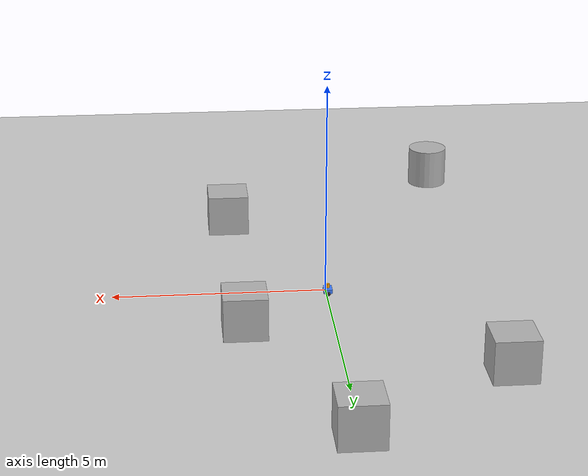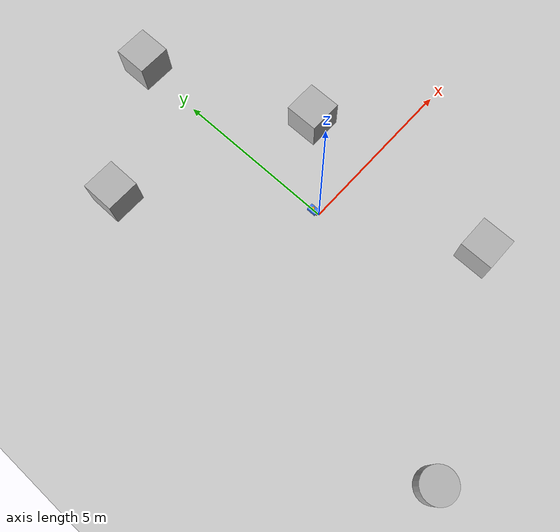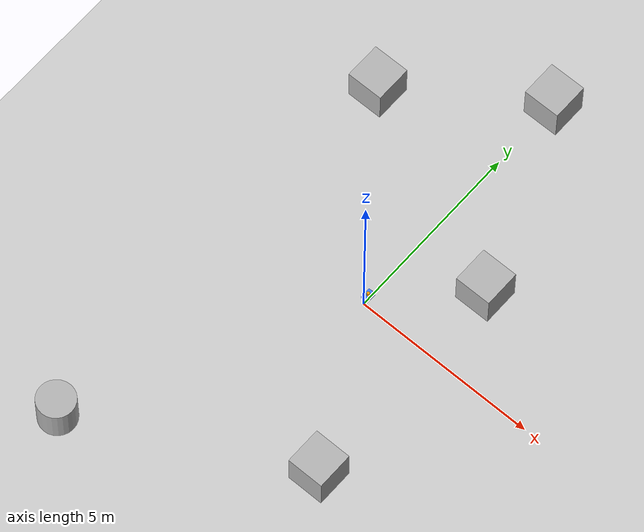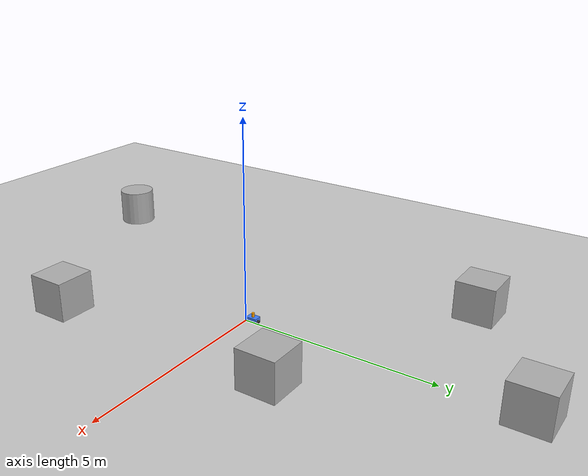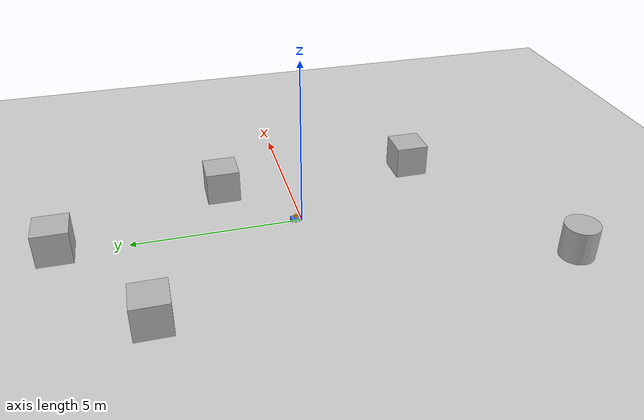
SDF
<sdf version="1.10">
 <world name="empty">
  <physics name="1ms" type="ignored">
   <max_step_size>0.001</max_step_size>
   <real_time_factor>1</real_time_factor>
   <real_time_update_rate>1000</real_time_update_rate>
  </physics>
  <plugin name="gz::sim::systems::Physics" filename="gz-sim-physics-system"/>
  <plugin name="gz::sim::systems::UserCommands" filename="gz-sim-user-commands-system"/>
  <plugin name="gz::sim::systems::SceneBroadcaster" filename="gz-sim-scene-broadcaster-system"/>
  <plugin name="gz::sim::systems::Contact" filename="gz-sim-contact-system"/>
  <plugin name="gz::sim::systems::Sensors" filename="gz-sim-sensors-system">
   <render_engine>ogre2</render_engine>
  </plugin>
  <plugin name="gz::sim::systems::Imu" filename="gz-sim-imu-system"/>
  <gravity>0 0 -9.8000000000000007</gravity>
  <magnetic_field>5.5644999999999998e-06 2.2875799999999999e-05 -4.2388400000000002e-05</magnetic_field>
  <atmosphere type="adiabatic"/>
  <scene>
   <ambient>0.400000006 0.400000006 0.400000006 1</ambient>
   <background>0.699999988 0.699999988 0.699999988 1</background>
   <shadows>true</shadows>
  </scene>
  <model name="ground_plane">
   <static>true</static>
   <link name="link">
    <collision name="collision">
     <geometry><plane><normal>0 0 1</normal><size>100 100</size></plane></geometry>
    </collision>
    <visual name="visual">
     <geometry><plane><normal>0 0 1</normal><size>100 100</size></plane></geometry>
     <material>
      <ambient>0.800000012 0.800000012 0.800000012 1</ambient>
      <diffuse>0.800000012 0.800000012 0.800000012 1</diffuse>
      <specular>0.800000012 0.800000012 0.800000012 1</specular>
     </material>
    </visual>
    <inertial>
     <mass>1</mass>
     <inertia><ixx>1</ixx><ixy>0</ixy><ixz>0</ixz><iyy>1</iyy><iyz>0</iyz><izz>1</izz></inertia>
    </inertial>
   </link>
  </model>
  <model name="diff-drive-bot">
   <link name="base_footprint">
    <inertial>
     <pose>6.9057463215637222e-20 0 0.054458598726114651 0 0 0</pose>
     <mass>3.1400000000000001</mass>
     <inertia>
      <ixx>0.024445912951167732</ixx>
      <ixy>0</ixy>
      <ixz>9.6680448501891943e-22</ixz>
      <iyy>0.01494591295116773</iyy>
      <iyz>0</iyz>
      <izz>0.029790000000000001</izz>
     </inertia>
    </inertial>
    <collision name="base_footprint_fixed_joint_lump__base_link_collision">
     <pose>0 0 0.10000000000000001 0 0 0</pose>
     <geometry><box><size>0.20000000000000001 0.28000000000000003 0.10000000000000001</size></box></geometry>
    </collision>
    <collision name="base_footprint_fixed_joint_lump__front_caster_wheel_link_collision_1">
     <pose>0.050000000000000003 0 0.025000000000000001 0 0 0</pose>
     <geometry><sphere><radius>0.025000000000000001</radius></sphere></geometry>
     <surface><friction><ode><mu>0.01</mu><mu2>0.01</mu2></ode></friction></surface>
    </collision>
    <collision name="base_footprint_fixed_joint_lump__rear_caster_wheel_link_collision_2">
     <pose>-0.050000000000000003 0 0.025000000000000001 0 0 0</pose>
     <geometry><sphere><radius>0.025000000000000001</radius></sphere></geometry>
     <surface><friction><ode><mu>0.01</mu><mu2>0.01</mu2></ode></friction></surface>
    </collision>
    <collision name="base_footprint_fixed_joint_lump__lidar_link_collision_3">
     <pose>0 0 0.20000000000000001 0 0 0</pose>
     <geometry>
      <cylinder><length>0.10000000000000001</length><radius>0.040000000000000001</radius></cylinder>
     </geometry>
    </collision>
    <visual name="base_footprint_fixed_joint_lump__base_link_visual">
     <pose>0 0 0.10000000000000001 0 0 0</pose>
     <geometry><box><size>0.20000000000000001 0.28000000000000003 0.10000000000000001</size></box></geometry>
     <material><diffuse>0.25 0.5 1 1</diffuse><ambient>0.25 0.5 1 1</ambient></material>
    </visual>
    <visual name="base_footprint_fixed_joint_lump__front_caster_wheel_link_visual_1">
     <pose>0.050000000000000003 0 0.025000000000000001 0 0 0</pose>
     <geometry><sphere><radius>0.025000000000000001</radius></sphere></geometry>
     <material>
      <diffuse>0.75000006 0.75000006 0.75000006 1</diffuse>
      <ambient>0.75000006 0.75000006 0.75000006 1</ambient>
     </material>
    </visual>
    <visual name="base_footprint_fixed_joint_lump__rear_caster_wheel_link_visual_2">
     <pose>-0.050000000000000003 0 0.025000000000000001 0 0 0</pose>
     <geometry><sphere><radius>0.025000000000000001</radius></sphere></geometry>
     <material>
      <diffuse>0.75000006 0.75000006 0.75000006 1</diffuse>
      <ambient>0.75000006 0.75000006 0.75000006 1</ambient>
     </material>
    </visual>
    <visual name="base_footprint_fixed_joint_lump__lidar_link_visual_3">
     <pose>0 0 0.20000000000000001 0 0 0</pose>
     <geometry>
      <cylinder><length>0.10000000000000001</length><radius>0.040000000000000001</radius></cylinder>
     </geometry>
     <material><diffuse>1 0.625 0 1</diffuse><ambient>1 0.625 0 1</ambient></material>
    </visual>
    <sensor name="lidar_sensor" type="gpu_lidar">
     <pose>0 0 0.20000000000000001 0 0 0</pose>
     <topic>scan</topic>
     <update_rate>10</update_rate>
     <enable_metrics>false</enable_metrics>
     <lidar>
      <scan>
       <horizontal>
        <samples>360</samples>
        <resolution>1</resolution>
        <min_angle>-3.1415899999999999</min_angle>
        <max_angle>3.1415899999999999</max_angle>
       </horizontal>
       <vertical>
        <samples>1</samples>
        <min_angle>0</min_angle>
        <max_angle>0</max_angle>
        <resolution>1</resolution>
       </vertical>
      </scan>
      <range><min>0.14999999999999999</min><max>8</max><resolution>0.01</resolution></range>
      <noise><type>gaussian</type><mean>0</mean><stddev>0.01</stddev></noise>
      <visibility_mask>4294967295</visibility_mask>
     </lidar>
    </sensor>
   </link>
   <joint name="base_to_left_wheel_joint" type="revolute">
    <parent>base_footprint</parent>
    <child>left_wheel_link</child>
    <axis>
     <xyz>0 1 0</xyz>
     <limit>
      <lower>-inf</lower>
      <upper>inf</upper>
      <effort>inf</effort>
      <velocity>inf</velocity>
      <stiffness>100000000</stiffness>
      <dissipation>1</dissipation>
     </limit>
     <dynamics>
      <spring_reference>0</spring_reference>
      <spring_stiffness>0</spring_stiffness>
      <damping>0</damping>
      <friction>0</friction>
     </dynamics>
    </axis>
   </joint>
   <link name="left_wheel_link">
    <pose>0 0.15299999999999991 0.049999999999999989 3.1415926535897931 1.1924561900300845 3.1415926535897931</pose>
    <inertial>
     <mass>0.12</mass>
     <inertia>
      <ixx>8.1760000000000017e-05</ixx>
      <ixy>0</ixy>
      <ixz>0</ixz>
      <iyy>0.00014999999999999999</iyy>
      <iyz>0</iyz>
      <izz>8.1760000000000017e-05</izz>
     </inertia>
    </inertial>
    <collision name="left_wheel_link_collision">
     <pose>0 0 0 1.5707963267948959 0 0</pose>
     <geometry>
      <cylinder><length>0.025999999999999999</length><radius>0.050000000000000003</radius></cylinder>
     </geometry>
     <surface>
      <contact><ode><kp>1000000</kp><kd>1</kd></ode></contact>
      <friction><ode><mu>1.5</mu><mu2>1.5</mu2></ode></friction>
     </surface>
    </collision>
    <visual name="left_wheel_link_visual">
     <pose>0 0 0 1.5707963267948959 0 0</pose>
     <geometry>
      <cylinder><length>0.025999999999999999</length><radius>0.050000000000000003</radius></cylinder>
     </geometry>
     <material><diffuse>0.125 0.125 0.125 1</diffuse><ambient>0.125 0.125 0.125 1</ambient></material>
    </visual>
   </link>
   <joint name="base_to_right_wheel_joint" type="revolute">
    <parent>base_footprint</parent>
    <child>right_wheel_link</child>
    <axis>
     <xyz>0 1 0</xyz>
     <limit>
      <lower>-inf</lower>
      <upper>inf</upper>
      <effort>inf</effort>
      <velocity>inf</velocity>
      <stiffness>100000000</stiffness>
      <dissipation>1</dissipation>
     </limit>
     <dynamics>
      <spring_reference>0</spring_reference>
      <spring_stiffness>0</spring_stiffness>
      <damping>0</damping>
      <friction>0</friction>
     </dynamics>
    </axis>
   </joint>
   <link name="right_wheel_link">
    <pose>3.4694469519536142e-18 -0.15299999999999997 0.049999999999999989 3.1415926535897931 1.2588698506475424 3.1415926535897931</pose>
    <inertial>
     <mass>0.12</mass>
     <inertia>
      <ixx>8.1760000000000017e-05</ixx>
      <ixy>0</ixy>
      <ixz>0</ixz>
      <iyy>0.00014999999999999999</iyy>
      <iyz>0</iyz>
      <izz>8.1760000000000017e-05</izz>
     </inertia>
    </inertial>
    <collision name="right_wheel_link_collision">
     <pose>0 0 0 1.5707963267948959 0 0</pose>
     <geometry>
      <cylinder><length>0.025999999999999999</length><radius>0.050000000000000003</radius></cylinder>
     </geometry>
     <surface>
      <contact><ode><kp>1000000</kp><kd>1</kd></ode></contact>
      <friction><ode><mu>1.5</mu><mu2>1.5</mu2></ode></friction>
     </surface>
    </collision>
    <visual name="right_wheel_link_visual">
     <pose>0 0 0 1.5707963267948959 0 0</pose>
     <geometry>
      <cylinder><length>0.025999999999999999</length><radius>0.050000000000000003</radius></cylinder>
     </geometry>
     <material><diffuse>0.125 0.125 0.125 1</diffuse><ambient>0.125 0.125 0.125 1</ambient></material>
    </visual>
   </link>
   <plugin name="gz_ros2_control::GazeboSimROS2ControlPlugin" filename="libgz_ros2_control-system.so">
    <parameters>/home/bangadmadhav/ros_projects/travel-time-prediction-amr/ros2_ws/install/robot_bringup/share/robot_bringup/config/controllers.yaml</parameters>
   </plugin>
   <frame name="base_to_front_caster_wheel_joint" attached_to="base_link">
    <pose>0.050000000000000003 0 -0.025000000000000001 0 0 0</pose>
   </frame>
   <frame name="front_caster_wheel_link" attached_to="base_to_front_caster_wheel_joint"/>
   <frame name="base_to_rear_caster_wheel_joint" attached_to="base_link">
    <pose>-0.050000000000000003 0 -0.025000000000000001 0 0 0</pose>
   </frame>
   <frame name="rear_caster_wheel_link" attached_to="base_to_rear_caster_wheel_joint"/>
   <frame name="lidar_joint" attached_to="base_link"><pose>0 0 0.14999999999999999 0 0 0</pose></frame>
   <frame name="lidar_link" attached_to="lidar_joint"/>
   <frame name="base_to_footprint" attached_to="base_footprint">
    <pose>0 0 0.050000000000000003 0 0 0</pose>
   </frame>
   <frame name="base_link" attached_to="base_to_footprint"/>
   <pose>-0.0282293398583266 0.19739402350181959 -4.092600054092714e-09 -3.8241632022509898e-15 -1.5696527483302879e-12 -0.009414636032224491</pose>
   <static>false</static>
  </model>
  <model name="box">
   <pose>2.1043132491753633 -4.062245548405631 0.49999999980497606 1.0048033485058014e-21 -2.4640853465547739e-21 -3.9210766489770922e-22</pose>
   <link name="box_link">
    <inertial>
     <inertia><ixx>0.16666</ixx><ixy>0</ixy><ixz>0</ixz><iyy>0.16666</iyy><iyz>0</iyz><izz>0.16666</izz></inertia>
     <mass>1</mass>
    </inertial>
    <collision name="box_collision"><geometry><box><size>1 1 1</size></box></geometry></collision>
    <visual name="box_visual">
     <geometry><box><size>1 1 1</size></box></geometry>
     <material>
      <ambient>0.300000012 0.300000012 0.300000012 1</ambient>
      <diffuse>0.699999988 0.699999988 0.699999988 1</diffuse>
      <specular>1 1 1 1</specular>
     </material>
    </visual>
   </link>
   <static>false</static>
  </model>
  <model name="cylinder">
   <pose>-3.5293640432081261 -6.9421882413476128 0.49999943207967634 -5.2881450450394133e-21 6.7921434478883226e-20 5.860709583944318e-21</pose>
   <link name="cylinder_link">
    <inertial>
     <inertia>
      <ixx>0.14580000000000001</ixx>
      <ixy>0</ixy>
      <ixz>0</ixz>
      <iyy>0.14580000000000001</iyy>
      <iyz>0</iyz>
      <izz>0.125</izz>
     </inertia>
     <mass>1</mass>
    </inertial>
    <collision name="cylinder_collision">
     <geometry><cylinder><radius>0.5</radius><length>1</length></cylinder></geometry>
    </collision>
    <visual name="cylinder_visual">
     <geometry><cylinder><radius>0.5</radius><length>1</length></cylinder></geometry>
     <material>
      <ambient>0.300000012 0.300000012 0.300000012 1</ambient>
      <diffuse>0.699999988 0.699999988 0.699999988 1</diffuse>
      <specular>1 1 1 1</specular>
     </material>
    </visual>
   </link>
   <static>false</static>
  </model>
  <model name="box_0">
   <pose>2.0218055970449269 2.0732778023448386 0.49999999980497606 1.0048033485058014e-21 -2.4640853465547739e-21 -3.9210766489770922e-22</pose>
   <link name="box_link">
    <inertial>
     <inertia><ixx>0.16666</ixx><ixy>0</ixy><ixz>0</ixz><iyy>0.16666</iyy><iyz>0</iyz><izz>0.16666</izz></inertia>
     <mass>1</mass>
    </inertial>
    <collision name="box_collision"><geometry><box><size>1 1 1</size></box></geometry></collision>
    <visual name="box_visual">
     <geometry><box><size>1 1 1</size></box></geometry>
     <material>
      <ambient>0.300000012 0.300000012 0.300000012 1</ambient>
      <diffuse>0.699999988 0.699999988 0.699999988 1</diffuse>
      <specular>1 1 1 1</specular>
     </material>
    </visual>
   </link>
   <static>false</static>
  </model>
  <model name="box_1">
   <pose>-3.4693177423851069 4.5488528938618709 0.49999999980497606 1.0048033485058014e-21 -2.4640853465547739e-21 -3.9210766489770922e-22</pose>
   <link name="box_link">
    <inertial>
     <inertia><ixx>0.16666</ixx><ixy>0</ixy><ixz>0</ixz><iyy>0.16666</iyy><iyz>0</iyz><izz>0.16666</izz></inertia>
     <mass>1</mass>
    </inertial>
    <collision name="box_collision"><geometry><box><size>1 1 1</size></box></geometry></collision>
    <visual name="box_visual">
     <geometry><box><size>1 1 1</size></box></geometry>
     <material>
      <ambient>0.300000012 0.300000012 0.300000012 1</ambient>
      <diffuse>0.699999988 0.699999988 0.699999988 1</diffuse>
      <specular>1 1 1 1</specular>
     </material>
    </visual>
   </link>
   <static>false</static>
  </model>
  <model name="box_2">
   <pose>0.056531017479136469 6.9656658748363061 0.49999999980497606 1.0048033485058014e-21 -2.4640853465547739e-21 -3.9210766489770922e-22</pose>
   <link name="box_link">
    <inertial>
     <inertia><ixx>0.16666</ixx><ixy>0</ixy><ixz>0</ixz><iyy>0.16666</iyy><iyz>0</iyz><izz>0.16666</izz></inertia>
     <mass>1</mass>
    </inertial>
    <collision name="box_collision"><geometry><box><size>1 1 1</size></box></geometry></collision>
    <visual name="box_visual">
     <geometry><box><size>1 1 1</size></box></geometry>
     <material>
      <ambient>0.300000012 0.300000012 0.300000012 1</ambient>
      <diffuse>0.699999988 0.699999988 0.699999988 1</diffuse>
      <specular>1 1 1 1</specular>
     </material>
    </visual>
   </link>
   <static>false</static>
  </model>
  <light name="sun" type="directional">
   <pose>0 0 10 0 0 0</pose>
   <intensity>1</intensity>
   <direction>-0.5 0.10000000000000001 -0.90000000000000002</direction>
   <diffuse>0.800000012 0.800000012 0.800000012 1</diffuse>
   <specular>0.200000003 0.200000003 0.200000003 1</specular>
   <attenuation>
    <range>1000</range>
    <linear>0.01</linear>
    <constant>0.90000000000000002</constant>
    <quadratic>0.001</quadratic>
   </attenuation>
   <spot><inner_angle>0</inner_angle><outer_angle>0</outer_angle><falloff>0</falloff></spot>
  </light>
 </world>
</sdf>
